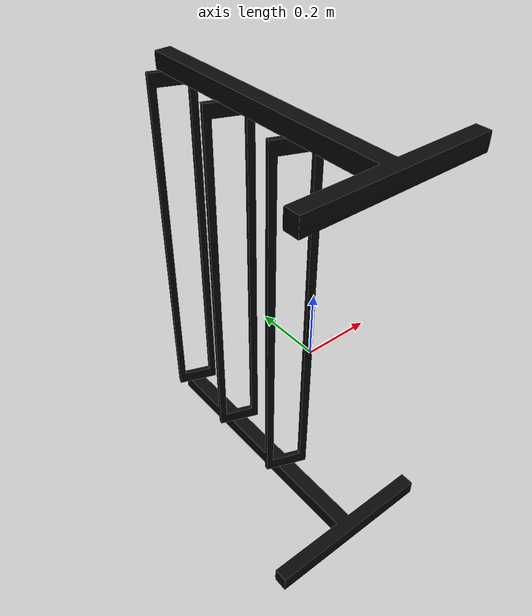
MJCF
<mujoco model="base">
  <compiler angle="radian" meshdir="assets" texturedir="assets" autolimits="true"/>
  <default>
    <default class="visual">
      <geom group="2" type="mesh" contype="0" conaffinity="0"/>
    </default>
    <default class="collision">
      <geom group="3" type="mesh"  solimp="0.95 0.99 0.001" solref="0.004 1" friction="1.0 0.005 0.0001"/>
    </default>
  </default>
  <asset>
    <material name="Plastic_black" specular="0.20000000000000004" shininess="0.49" rgba="0.030752 0.030752 0.030752 1.000000"/>
    <mesh file="base.obj" scale="0.25 0.25 0.25"/>
    <mesh file="base_collision_0.obj" scale="0.25 0.25 0.25"/>
    <mesh file="base_collision_1.obj" scale="0.25 0.25 0.25"/>
    <mesh file="base_collision_2.obj" scale="0.25 0.25 0.25"/>
    <mesh file="base_collision_3.obj" scale="0.25 0.25 0.25"/>
    <mesh file="base_collision_4.obj" scale="0.25 0.25 0.25"/>
    <mesh file="base_collision_5.obj" scale="0.25 0.25 0.25"/>
    <mesh file="base_collision_6.obj" scale="0.25 0.25 0.25"/>
    <mesh file="base_collision_7.obj" scale="0.25 0.25 0.25"/>
    <mesh file="base_collision_8.obj" scale="0.25 0.25 0.25"/>
    <mesh file="base_collision_9.obj" scale="0.25 0.25 0.25"/>
    <mesh file="base_collision_10.obj" scale="0.25 0.25 0.25"/>
    <mesh file="base_collision_11.obj" scale="0.25 0.25 0.25"/>
    <mesh file="base_collision_12.obj" scale="0.25 0.25 0.25"/>
    <mesh file="base_collision_13.obj" scale="0.25 0.25 0.25"/>
    <mesh file="base_collision_14.obj" scale="0.25 0.25 0.25"/>
    <mesh file="base_collision_15.obj" scale="0.25 0.25 0.25"/>
    <mesh file="base_collision_16.obj" scale="0.25 0.25 0.25"/>
    <mesh file="base_collision_17.obj" scale="0.25 0.25 0.25"/>
    <mesh file="base_collision_18.obj" scale="0.25 0.25 0.25"/>
    <mesh file="base_collision_19.obj" scale="0.25 0.25 0.25"/>
    <mesh file="base_collision_20.obj" scale="0.25 0.25 0.25"/>
    <mesh file="base_collision_21.obj" scale="0.25 0.25 0.25"/>
    <mesh file="base_collision_22.obj" scale="0.25 0.25 0.25"/>
    <mesh file="base_collision_23.obj" scale="0.25 0.25 0.25"/>
    <mesh file="base_collision_24.obj" scale="0.25 0.25 0.25"/>
    <mesh file="base_collision_25.obj" scale="0.25 0.25 0.25"/>
  </asset>
  <worldbody>
    <body name="base">
      <geom material="Plastic_black" mesh="base" class="visual"/>
      <geom mesh="base_collision_0" rgba="0.4139977033078729 0.965584190655115 0.038491470711151665 1" class="collision"/>
      <geom mesh="base_collision_1" rgba="0.07008152399821799 0.1354792640544794 0.20051862123851427 1" class="collision"/>
      <geom mesh="base_collision_2" rgba="0.8492940937178575 0.3063867522178073 0.6472138917985207 1" class="collision"/>
      <geom mesh="base_collision_3" rgba="0.8077129521078048 0.15992197455632895 0.2635308697563976 1" class="collision"/>
      <geom mesh="base_collision_4" rgba="0.2697317327818245 0.2763638324662565 0.2897450343024346 1" class="collision"/>
      <geom mesh="base_collision_5" rgba="0.7312037870532633 0.6411388155765605 0.6381348136197436 1" class="collision"/>
      <geom mesh="base_collision_6" rgba="0.3142567318908438 0.20722473068156577 0.7718702327341584 1" class="collision"/>
      <geom mesh="base_collision_7" rgba="0.8671555885208966 0.022125211716656046 0.9003344014595976 1" class="collision"/>

      <geom mesh="base_collision_8" rgba="0.26290452210664716 0.7825579262649912 0.96490520567217 1" class="collision"/>

      <body name="top-rack">
        <geom mesh="base_collision_9" rgba="0.8266384410480065 0.9028293486936798 0.9231132852014123 1" class="collision"/>
      </body>

      <geom mesh="base_collision_10" rgba="0.4457673917740731 0.5803422075066947 0.016900945383652055 1" class="collision"/>
      <geom mesh="base_collision_11" rgba="0.9586445208701742 0.5120329490824171 0.30202950359684433 1" class="collision"/>
      <geom mesh="base_collision_12" rgba="0.2991303344785302 0.2575673965680838 0.6138718572270379 1" class="collision"/>
      <geom mesh="base_collision_13" rgba="0.47888310243349996 0.6590844655687733 0.11127974936836738 1" class="collision"/>

      <geom mesh="base_collision_14" rgba="0.273008319868388 0.6760576446546016 0.882139884128549 1" class="collision"/>
      <geom mesh="base_collision_15" rgba="0.45601575654133 0.004314422753513791 0.11710554985734434 1" class="collision"/>
      <geom mesh="base_collision_16" rgba="0.4267642035594801 0.3957172310137703 0.8768382286403134 1" class="collision"/>
      <geom mesh="base_collision_17" rgba="0.6685205716291798 0.8277321375060079 0.37083806497654315 1" class="collision"/>
      <geom mesh="base_collision_18" rgba="0.9623149175482841 0.36560263653229286 0.3942636526094848 1" class="collision"/>
      <geom mesh="base_collision_19" rgba="0.057052849441164954 0.5960824056962274 0.20137748717898796 1" class="collision"/>
      <geom mesh="base_collision_20" rgba="0.7694691797822715 0.8069172044412077 0.15456128783106182 1" class="collision"/>
      <geom mesh="base_collision_21" rgba="0.2796978122710435 0.7847904306486788 0.8455058151242174 1" class="collision"/>
      <geom mesh="base_collision_22" rgba="0.9783501882427527 0.23218206759239157 0.5086655860490242 1" class="collision"/>
      <geom mesh="base_collision_23" rgba="0.32138052901086556 0.34493112996132114 0.7110027585646255 1" class="collision"/>
      <geom mesh="base_collision_24" rgba="0.9600081894846154 0.6190766641764385 0.1633270495083089 1" class="collision"/>
      <geom mesh="base_collision_25" rgba="0.19168204985800308 0.6690489425469313 0.9038241359328755 1" class="collision"/>
    </body>
  </worldbody>
</mujoco>
